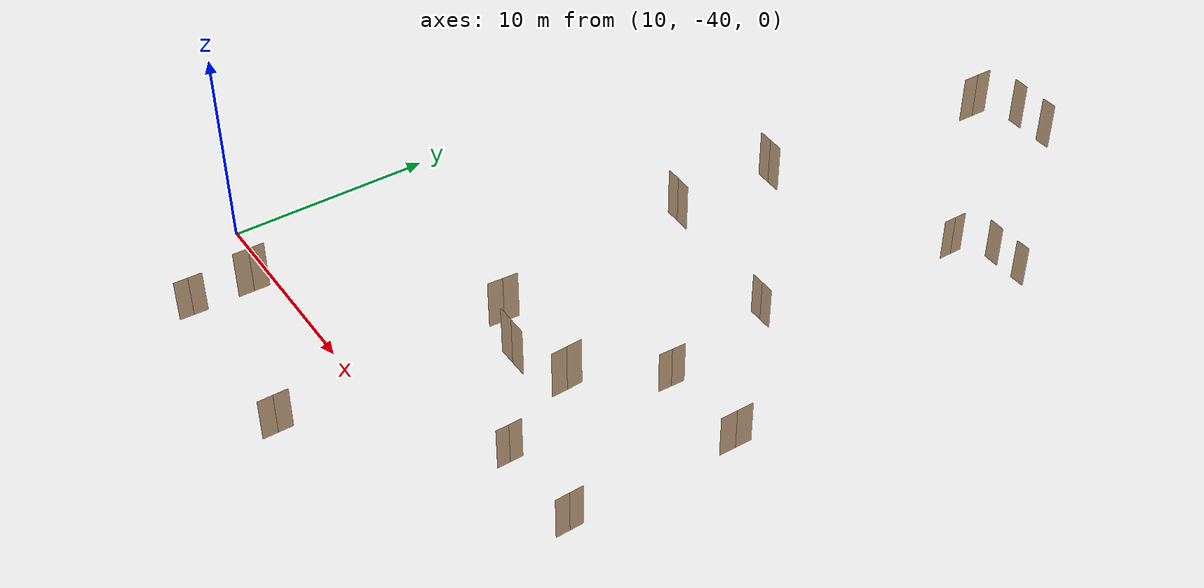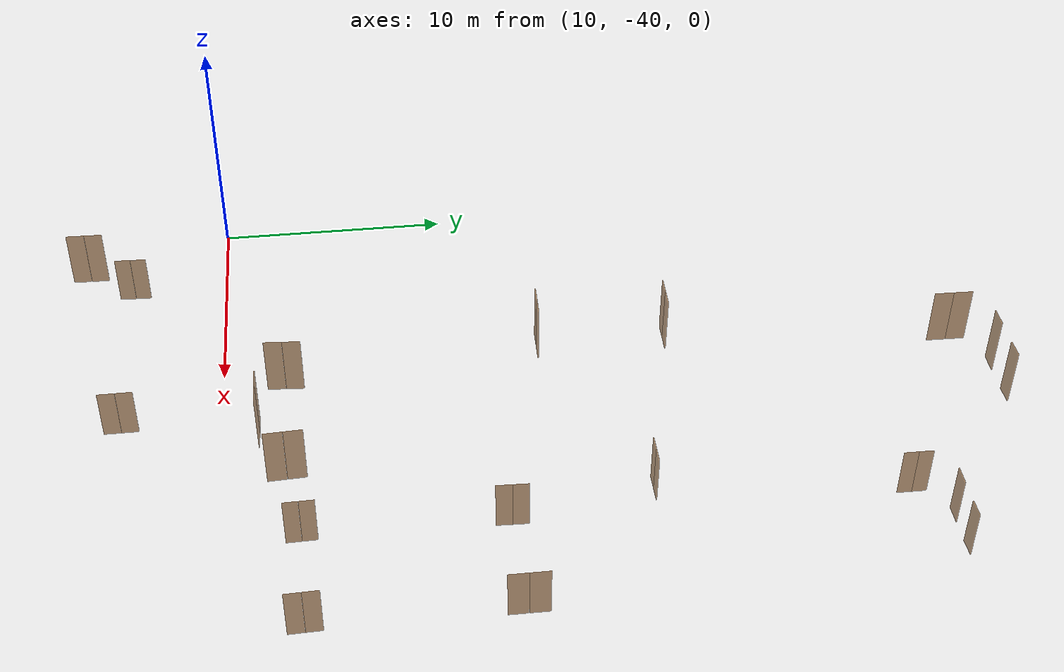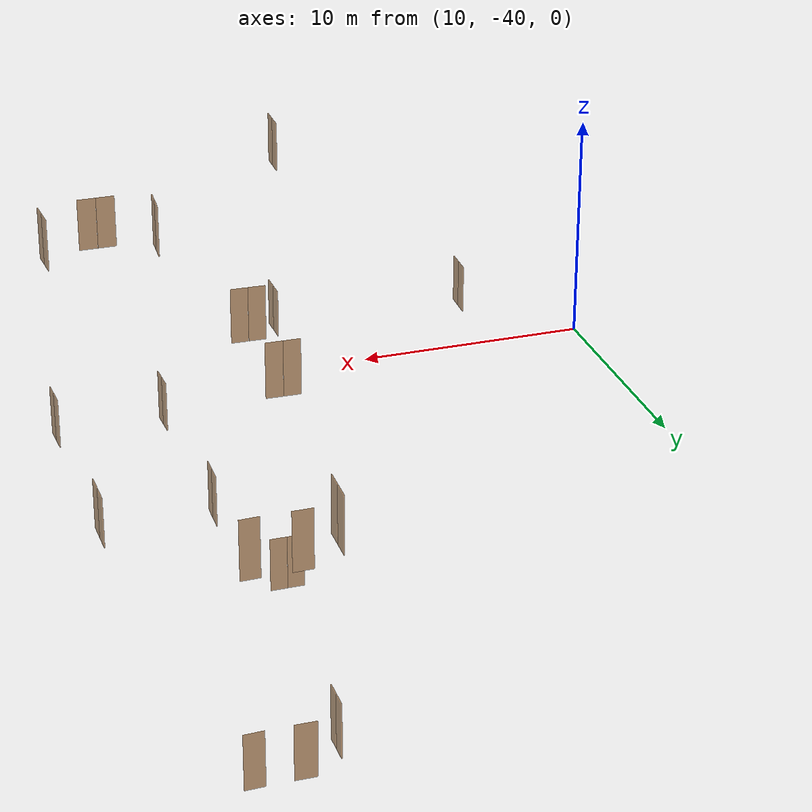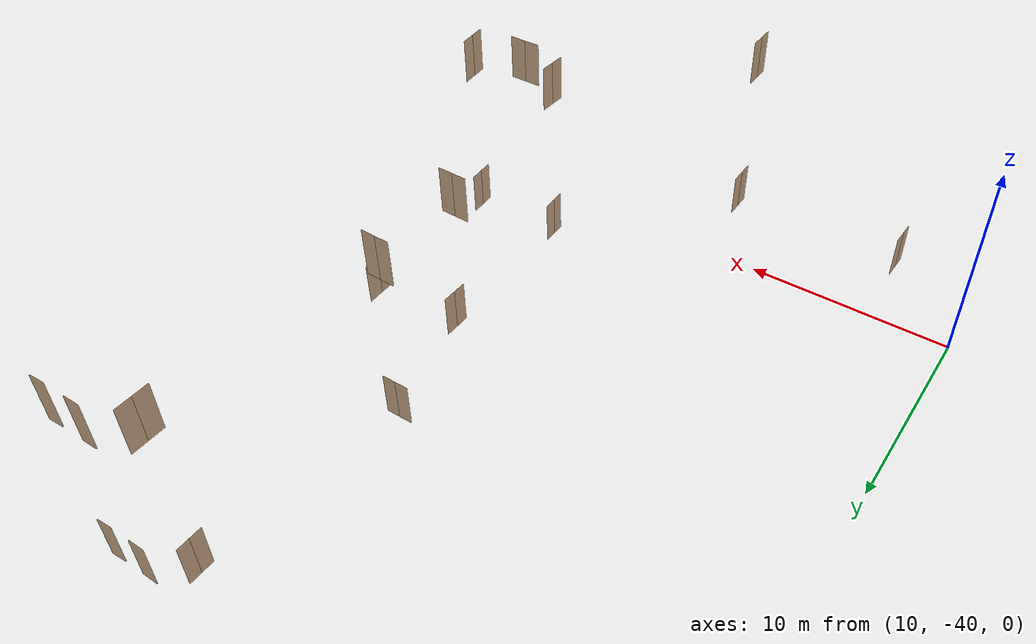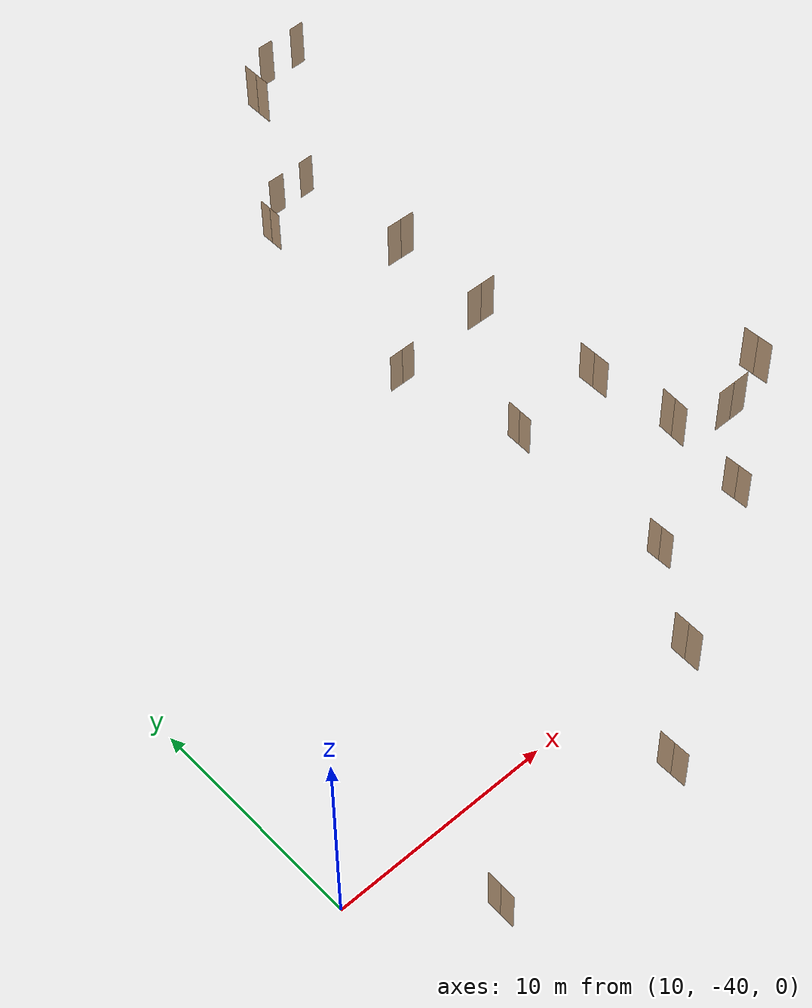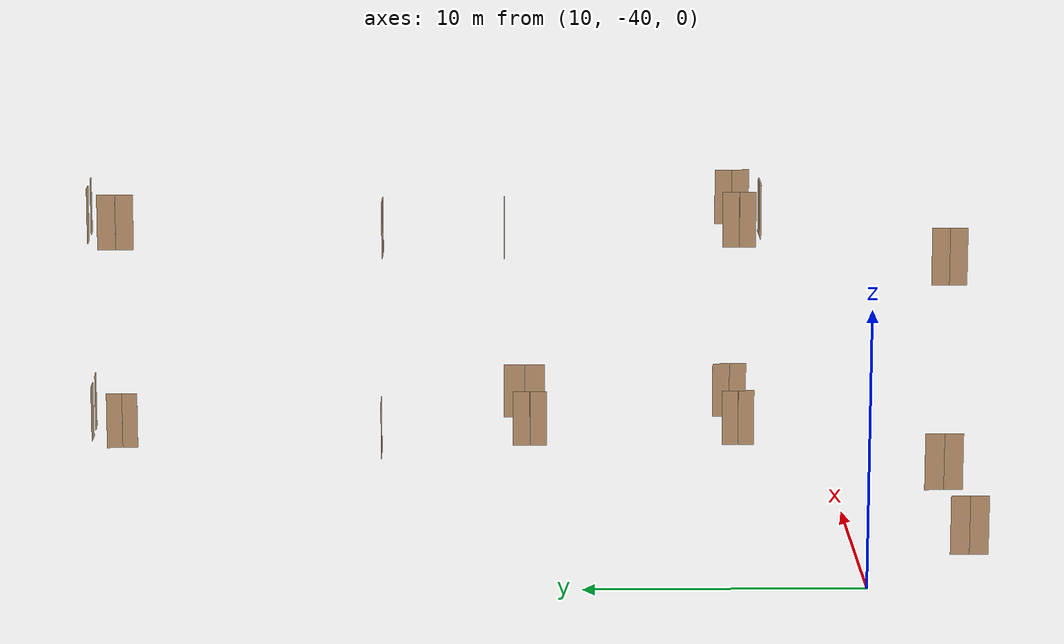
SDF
<sdf version="1.7">
 <world name="sim_world">
  <model name="TD1023CP2">
   <pose>14.151884414716331 -44.090000320503776 0.0 0 0 1.5401873563583324</pose>
   <link name="right">
    <pose>0.3461613428119867 0 1.11 0 0 0</pose>
    <visual name="right_visual">
     <geometry><box><size>0.6823226856239734 0.03 2.2</size></box></geometry>
     <material>
      <ambient>0.5 0.25 0 0.6</ambient>
      <diffuse>0.5 0.25 0 0.6</diffuse>
      <pbr><metal><metalness>0.0</metalness></metal></pbr>
     </material>
    </visual>
    <collision name="right_collision">
     <geometry><box><size>0.6823226856239734 0.03 2.2</size></box></geometry>
     <surface><contact><collide_bitmask>0x02</collide_bitmask></contact></surface>
    </collision>
    <inertial>
     <mass>50.0</mass>
     <inertia><ixx>20.17041666666667</ixx><iyy>22.106517697154636</iyy><izz>1.9436010304879652</izz></inertia>
    </inertial>
   </link>
   <joint name="right_joint" type="revolute">
    <parent>world</parent>
    <child>right</child>
    <axis><xyz>0 0 -1</xyz><limit><lower>0</lower><upper>1.57</upper></limit></axis>
    <pose>0.3461613428119867 0 0 0 0 0</pose>
   </joint>
   <link name="left">
    <pose>-0.3461613428119867 0 1.11 0 0 0</pose>
    <visual name="left_visual">
     <geometry><box><size>0.6823226856239734 0.03 2.2</size></box></geometry>
     <material>
      <ambient>0.5 0.25 0 0.6</ambient>
      <diffuse>0.5 0.25 0 0.6</diffuse>
      <pbr><metal><metalness>0.0</metalness></metal></pbr>
     </material>
    </visual>
    <collision name="left_collision">
     <geometry><box><size>0.6823226856239734 0.03 2.2</size></box></geometry>
     <surface><contact><collide_bitmask>0x02</collide_bitmask></contact></surface>
    </collision>
    <inertial>
     <mass>50.0</mass>
     <inertia><ixx>20.17041666666667</ixx><iyy>22.106517697154636</iyy><izz>1.9436010304879652</izz></inertia>
    </inertial>
   </link>
   <joint name="left_joint" type="revolute">
    <parent>world</parent>
    <child>left</child>
    <axis><xyz>0 0 -1</xyz><limit><lower>-1.57</lower><upper>0</upper></limit></axis>
    <pose>-0.3461613428119867 0 0 0 0 0</pose>
   </joint>
   <plugin name="register_component" filename="libregister_component.so">
    <component name="Door">
     <v_max_door>0.5</v_max_door>
     <a_max_door>0.3</a_max_door>
     <a_nom_door>0.15</a_nom_door>
     <dx_min_door>0.01</dx_min_door>
     <f_max_door>500.0</f_max_door>
     <ros_interface>true</ros_interface>
     <door name="TD1023CP2" type="DoubleSwingDoor" left_joint_name="left_joint" right_joint_name="right_joint"/>
    </component>
   </plugin>
  </model>
  <model name="TD1018AA">
   <pose>29.951908290406482 -36.82259198297031 0.0 0 0 -1.5430325593746388</pose>
   <link name="right">
    <pose>0.31754923010777264 0 1.11 0 0 0</pose>
    <visual name="right_visual">
     <geometry><box><size>0.6250984602155453 0.03 2.2</size></box></geometry>
     <material>
      <ambient>0.5 0.25 0 0.6</ambient>
      <diffuse>0.5 0.25 0 0.6</diffuse>
      <pbr><metal><metalness>0.0</metalness></metal></pbr>
     </material>
    </visual>
    <collision name="right_collision">
     <geometry><box><size>0.6250984602155453 0.03 2.2</size></box></geometry>
     <surface><contact><collide_bitmask>0x02</collide_bitmask></contact></surface>
    </collision>
    <inertial>
     <mass>50.0</mass>
     <inertia><ixx>20.17041666666667</ixx><iyy>21.79478368734936</iyy><izz>1.6318670206826902</izz></inertia>
    </inertial>
   </link>
   <joint name="right_joint" type="revolute">
    <parent>world</parent>
    <child>right</child>
    <axis><xyz>0 0 -1</xyz><limit><lower>0</lower><upper>1.57</upper></limit></axis>
    <pose>0.31754923010777264 0 0 0 0 0</pose>
   </joint>
   <link name="left">
    <pose>-0.31754923010777264 0 1.11 0 0 0</pose>
    <visual name="left_visual">
     <geometry><box><size>0.6250984602155453 0.03 2.2</size></box></geometry>
     <material>
      <ambient>0.5 0.25 0 0.6</ambient>
      <diffuse>0.5 0.25 0 0.6</diffuse>
      <pbr><metal><metalness>0.0</metalness></metal></pbr>
     </material>
    </visual>
    <collision name="left_collision">
     <geometry><box><size>0.6250984602155453 0.03 2.2</size></box></geometry>
     <surface><contact><collide_bitmask>0x02</collide_bitmask></contact></surface>
    </collision>
    <inertial>
     <mass>50.0</mass>
     <inertia><ixx>20.17041666666667</ixx><iyy>21.79478368734936</iyy><izz>1.6318670206826902</izz></inertia>
    </inertial>
   </link>
   <joint name="left_joint" type="revolute">
    <parent>world</parent>
    <child>left</child>
    <axis><xyz>0 0 -1</xyz><limit><lower>-1.57</lower><upper>0</upper></limit></axis>
    <pose>-0.31754923010777264 0 0 0 0 0</pose>
   </joint>
   <plugin name="register_component" filename="libregister_component.so">
    <component name="Door">
     <v_max_door>0.5</v_max_door>
     <a_max_door>0.3</a_max_door>
     <a_nom_door>0.15</a_nom_door>
     <dx_min_door>0.01</dx_min_door>
     <f_max_door>500.0</f_max_door>
     <ros_interface>true</ros_interface>
     <door name="TD1018AA" type="DoubleSwingDoor" left_joint_name="left_joint" right_joint_name="right_joint"/>
    </component>
   </plugin>
  </model>
  <model name="TD1015AA">
   <pose>34.52737757915742 -36.775884167848716 0.0 0 0 1.6088766030403268</pose>
   <link name="right">
    <pose>0.3404664622116848 0 1.11 0 0 0</pose>
    <visual name="right_visual">
     <geometry><box><size>0.6709329244233696 0.03 2.2</size></box></geometry>
     <material>
      <ambient>0.5 0.25 0 0.6</ambient>
      <diffuse>0.5 0.25 0 0.6</diffuse>
      <pbr><metal><metalness>0.0</metalness></metal></pbr>
     </material>
    </visual>
    <collision name="right_collision">
     <geometry><box><size>0.6709329244233696 0.03 2.2</size></box></geometry>
     <surface><contact><collide_bitmask>0x02</collide_bitmask></contact></surface>
    </collision>
    <inertial>
     <mass>50.0</mass>
     <inertia><ixx>20.17041666666667</ixx><iyy>22.042295787813735</iyy><izz>1.8793791211470627</izz></inertia>
    </inertial>
   </link>
   <joint name="right_joint" type="revolute">
    <parent>world</parent>
    <child>right</child>
    <axis><xyz>0 0 -1</xyz><limit><lower>0</lower><upper>1.57</upper></limit></axis>
    <pose>0.3404664622116848 0 0 0 0 0</pose>
   </joint>
   <link name="left">
    <pose>-0.3404664622116848 0 1.11 0 0 0</pose>
    <visual name="left_visual">
     <geometry><box><size>0.6709329244233696 0.03 2.2</size></box></geometry>
     <material>
      <ambient>0.5 0.25 0 0.6</ambient>
      <diffuse>0.5 0.25 0 0.6</diffuse>
      <pbr><metal><metalness>0.0</metalness></metal></pbr>
     </material>
    </visual>
    <collision name="left_collision">
     <geometry><box><size>0.6709329244233696 0.03 2.2</size></box></geometry>
     <surface><contact><collide_bitmask>0x02</collide_bitmask></contact></surface>
    </collision>
    <inertial>
     <mass>50.0</mass>
     <inertia><ixx>20.17041666666667</ixx><iyy>22.042295787813735</iyy><izz>1.8793791211470627</izz></inertia>
    </inertial>
   </link>
   <joint name="left_joint" type="revolute">
    <parent>world</parent>
    <child>left</child>
    <axis><xyz>0 0 -1</xyz><limit><lower>-1.57</lower><upper>0</upper></limit></axis>
    <pose>-0.3404664622116848 0 0 0 0 0</pose>
   </joint>
   <plugin name="register_component" filename="libregister_component.so">
    <component name="Door">
     <v_max_door>0.5</v_max_door>
     <a_max_door>0.3</a_max_door>
     <a_nom_door>0.15</a_nom_door>
     <dx_min_door>0.01</dx_min_door>
     <f_max_door>500.0</f_max_door>
     <ros_interface>true</ros_interface>
     <door name="TD1015AA" type="DoubleSwingDoor" left_joint_name="left_joint" right_joint_name="right_joint"/>
    </component>
   </plugin>
  </model>
  <model name="TD1016AA">
   <pose>34.49816555542807 -28.447820130466024 0.0 0 0 1.5747833511723939</pose>
   <link name="right">
    <pose>0.4123607880446388 0 1.11 0 0 0</pose>
    <visual name="right_visual">
     <geometry><box><size>0.8147215760892776 0.03 2.2</size></box></geometry>
     <material>
      <ambient>0.5 0.25 0 0.6</ambient>
      <diffuse>0.5 0.25 0 0.6</diffuse>
      <pbr><metal><metalness>0.0</metalness></metal></pbr>
     </material>
    </visual>
    <collision name="right_collision">
     <geometry><box><size>0.8147215760892776 0.03 2.2</size></box></geometry>
     <surface><contact><collide_bitmask>0x02</collide_bitmask></contact></surface>
    </collision>
    <inertial>
     <mass>50.0</mass>
     <inertia><ixx>20.17041666666667</ixx><iyy>22.93238019393916</iyy><izz>2.769463527272486</izz></inertia>
    </inertial>
   </link>
   <joint name="right_joint" type="revolute">
    <parent>world</parent>
    <child>right</child>
    <axis><xyz>0 0 -1</xyz><limit><lower>0</lower><upper>1.57</upper></limit></axis>
    <pose>0.4123607880446388 0 0 0 0 0</pose>
   </joint>
   <link name="left">
    <pose>-0.4123607880446388 0 1.11 0 0 0</pose>
    <visual name="left_visual">
     <geometry><box><size>0.8147215760892776 0.03 2.2</size></box></geometry>
     <material>
      <ambient>0.5 0.25 0 0.6</ambient>
      <diffuse>0.5 0.25 0 0.6</diffuse>
      <pbr><metal><metalness>0.0</metalness></metal></pbr>
     </material>
    </visual>
    <collision name="left_collision">
     <geometry><box><size>0.8147215760892776 0.03 2.2</size></box></geometry>
     <surface><contact><collide_bitmask>0x02</collide_bitmask></contact></surface>
    </collision>
    <inertial>
     <mass>50.0</mass>
     <inertia><ixx>20.17041666666667</ixx><iyy>22.93238019393916</iyy><izz>2.769463527272486</izz></inertia>
    </inertial>
   </link>
   <joint name="left_joint" type="revolute">
    <parent>world</parent>
    <child>left</child>
    <axis><xyz>0 0 -1</xyz><limit><lower>-1.57</lower><upper>0</upper></limit></axis>
    <pose>-0.4123607880446388 0 0 0 0 0</pose>
   </joint>
   <plugin name="register_component" filename="libregister_component.so">
    <component name="Door">
     <v_max_door>0.5</v_max_door>
     <a_max_door>0.3</a_max_door>
     <a_nom_door>0.15</a_nom_door>
     <dx_min_door>0.01</dx_min_door>
     <f_max_door>500.0</f_max_door>
     <ros_interface>true</ros_interface>
     <door name="TD1016AA" type="DoubleSwingDoor" left_joint_name="left_joint" right_joint_name="right_joint"/>
    </component>
   </plugin>
  </model>
  <model name="TD1017AA">
   <pose>29.95216640663613 -28.57745058997337 0.0 0 0 -1.597461133918594</pose>
   <link name="right">
    <pose>0.3354739616892271 0 1.11 0 0 0</pose>
    <visual name="right_visual">
     <geometry><box><size>0.6609479233784542 0.03 2.2</size></box></geometry>
     <material>
      <ambient>0.5 0.25 0 0.6</ambient>
      <diffuse>0.5 0.25 0 0.6</diffuse>
      <pbr><metal><metalness>0.0</metalness></metal></pbr>
     </material>
    </visual>
    <collision name="right_collision">
     <geometry><box><size>0.6609479233784542 0.03 2.2</size></box></geometry>
     <surface><contact><collide_bitmask>0x02</collide_bitmask></contact></surface>
    </collision>
    <inertial>
     <mass>50.0</mass>
     <inertia><ixx>20.17041666666667</ixx><iyy>21.986883989242884</iyy><izz>1.8239673225762125</izz></inertia>
    </inertial>
   </link>
   <joint name="right_joint" type="revolute">
    <parent>world</parent>
    <child>right</child>
    <axis><xyz>0 0 -1</xyz><limit><lower>0</lower><upper>1.57</upper></limit></axis>
    <pose>0.3354739616892271 0 0 0 0 0</pose>
   </joint>
   <link name="left">
    <pose>-0.3354739616892271 0 1.11 0 0 0</pose>
    <visual name="left_visual">
     <geometry><box><size>0.6609479233784542 0.03 2.2</size></box></geometry>
     <material>
      <ambient>0.5 0.25 0 0.6</ambient>
      <diffuse>0.5 0.25 0 0.6</diffuse>
      <pbr><metal><metalness>0.0</metalness></metal></pbr>
     </material>
    </visual>
    <collision name="left_collision">
     <geometry><box><size>0.6609479233784542 0.03 2.2</size></box></geometry>
     <surface><contact><collide_bitmask>0x02</collide_bitmask></contact></surface>
    </collision>
    <inertial>
     <mass>50.0</mass>
     <inertia><ixx>20.17041666666667</ixx><iyy>21.986883989242884</iyy><izz>1.8239673225762125</izz></inertia>
    </inertial>
   </link>
   <joint name="left_joint" type="revolute">
    <parent>world</parent>
    <child>left</child>
    <axis><xyz>0 0 -1</xyz><limit><lower>-1.57</lower><upper>0</upper></limit></axis>
    <pose>-0.3354739616892271 0 0 0 0 0</pose>
   </joint>
   <plugin name="register_component" filename="libregister_component.so">
    <component name="Door">
     <v_max_door>0.5</v_max_door>
     <a_max_door>0.3</a_max_door>
     <a_nom_door>0.15</a_nom_door>
     <dx_min_door>0.01</dx_min_door>
     <f_max_door>500.0</f_max_door>
     <ros_interface>true</ros_interface>
     <door name="TD1017AA" type="DoubleSwingDoor" left_joint_name="left_joint" right_joint_name="right_joint"/>
    </component>
   </plugin>
  </model>
  <model name="TD1022AA">
   <pose>28.610231351138722 -22.72563021294526 0.0 0 0 3.141592653589793</pose>
   <link name="right">
    <pose>0.3318589142145072 0 1.11 0 0 0</pose>
    <visual name="right_visual">
     <geometry><box><size>0.6537178284290144 0.03 2.2</size></box></geometry>
     <material>
      <ambient>0.5 0.25 0 0.6</ambient>
      <diffuse>0.5 0.25 0 0.6</diffuse>
      <pbr><metal><metalness>0.0</metalness></metal></pbr>
     </material>
    </visual>
    <collision name="right_collision">
     <geometry><box><size>0.6537178284290144 0.03 2.2</size></box></geometry>
     <surface><contact><collide_bitmask>0x02</collide_bitmask></contact></surface>
    </collision>
    <inertial>
     <mass>50.0</mass>
     <inertia><ixx>20.17041666666667</ixx><iyy>21.947279163358115</iyy><izz>1.7843624966914429</izz></inertia>
    </inertial>
   </link>
   <joint name="right_joint" type="revolute">
    <parent>world</parent>
    <child>right</child>
    <axis><xyz>0 0 -1</xyz><limit><lower>0</lower><upper>1.57</upper></limit></axis>
    <pose>0.3318589142145072 0 0 0 0 0</pose>
   </joint>
   <link name="left">
    <pose>-0.3318589142145072 0 1.11 0 0 0</pose>
    <visual name="left_visual">
     <geometry><box><size>0.6537178284290144 0.03 2.2</size></box></geometry>
     <material>
      <ambient>0.5 0.25 0 0.6</ambient>
      <diffuse>0.5 0.25 0 0.6</diffuse>
      <pbr><metal><metalness>0.0</metalness></metal></pbr>
     </material>
    </visual>
    <collision name="left_collision">
     <geometry><box><size>0.6537178284290144 0.03 2.2</size></box></geometry>
     <surface><contact><collide_bitmask>0x02</collide_bitmask></contact></surface>
    </collision>
    <inertial>
     <mass>50.0</mass>
     <inertia><ixx>20.17041666666667</ixx><iyy>21.947279163358115</iyy><izz>1.7843624966914429</izz></inertia>
    </inertial>
   </link>
   <joint name="left_joint" type="revolute">
    <parent>world</parent>
    <child>left</child>
    <axis><xyz>0 0 -1</xyz><limit><lower>-1.57</lower><upper>0</upper></limit></axis>
    <pose>-0.3318589142145072 0 0 0 0 0</pose>
   </joint>
   <plugin name="register_component" filename="libregister_component.so">
    <component name="Door">
     <v_max_door>0.5</v_max_door>
     <a_max_door>0.3</a_max_door>
     <a_nom_door>0.15</a_nom_door>
     <dx_min_door>0.01</dx_min_door>
     <f_max_door>500.0</f_max_door>
     <ros_interface>true</ros_interface>
     <door name="TD1022AA" type="DoubleSwingDoor" left_joint_name="left_joint" right_joint_name="right_joint"/>
    </component>
   </plugin>
  </model>
  <model name="TD1007AA">
   <pose>29.895930735907072 -12.466205875995822 0.0 0 0 -1.5737789346019069</pose>
   <link name="right">
    <pose>0.3066546672582795 0 1.11 0 0 0</pose>
    <visual name="right_visual">
     <geometry><box><size>0.603309334516559 0.03 2.2</size></box></geometry>
     <material>
      <ambient>0.5 0.25 0 0.6</ambient>
      <diffuse>0.5 0.25 0 0.6</diffuse>
      <pbr><metal><metalness>0.0</metalness></metal></pbr>
     </material>
    </visual>
    <collision name="right_collision">
     <geometry><box><size>0.603309334516559 0.03 2.2</size></box></geometry>
     <surface><contact><collide_bitmask>0x02</collide_bitmask></contact></surface>
    </collision>
    <inertial>
     <mass>50.0</mass>
     <inertia><ixx>20.17041666666667</ixx><iyy>21.683258971311727</iyy><izz>1.5203423046450555</izz></inertia>
    </inertial>
   </link>
   <joint name="right_joint" type="revolute">
    <parent>world</parent>
    <child>right</child>
    <axis><xyz>0 0 -1</xyz><limit><lower>0</lower><upper>1.57</upper></limit></axis>
    <pose>0.3066546672582795 0 0 0 0 0</pose>
   </joint>
   <link name="left">
    <pose>-0.3066546672582795 0 1.11 0 0 0</pose>
    <visual name="left_visual">
     <geometry><box><size>0.603309334516559 0.03 2.2</size></box></geometry>
     <material>
      <ambient>0.5 0.25 0 0.6</ambient>
      <diffuse>0.5 0.25 0 0.6</diffuse>
      <pbr><metal><metalness>0.0</metalness></metal></pbr>
     </material>
    </visual>
    <collision name="left_collision">
     <geometry><box><size>0.603309334516559 0.03 2.2</size></box></geometry>
     <surface><contact><collide_bitmask>0x02</collide_bitmask></contact></surface>
    </collision>
    <inertial>
     <mass>50.0</mass>
     <inertia><ixx>20.17041666666667</ixx><iyy>21.683258971311727</iyy><izz>1.5203423046450555</izz></inertia>
    </inertial>
   </link>
   <joint name="left_joint" type="revolute">
    <parent>world</parent>
    <child>left</child>
    <axis><xyz>0 0 -1</xyz><limit><lower>-1.57</lower><upper>0</upper></limit></axis>
    <pose>-0.3066546672582795 0 0 0 0 0</pose>
   </joint>
   <plugin name="register_component" filename="libregister_component.so">
    <component name="Door">
     <v_max_door>0.5</v_max_door>
     <a_max_door>0.3</a_max_door>
     <a_nom_door>0.15</a_nom_door>
     <dx_min_door>0.01</dx_min_door>
     <f_max_door>500.0</f_max_door>
     <ros_interface>true</ros_interface>
     <door name="TD1007AA" type="DoubleSwingDoor" left_joint_name="left_joint" right_joint_name="right_joint"/>
    </component>
   </plugin>
  </model>
  <model name="em2">
   <pose>33.0865727852599 -11.178082443157725 0.0 0 0 0.03191096870064347</pose>
   <link name="right">
    <pose>0 0 1.11 0 0 0</pose>
    <visual name="right_visual">
     <geometry><box><size>0.7504608987853366 0.03 2.2</size></box></geometry>
     <material>
      <ambient>0.5 0.25 0 0.6</ambient>
      <diffuse>0.5 0.25 0 0.6</diffuse>
      <pbr><metal><metalness>0.0</metalness></metal></pbr>
     </material>
    </visual>
    <collision name="right_collision">
     <geometry><box><size>0.7504608987853366 0.03 2.2</size></box></geometry>
     <surface><contact><collide_bitmask>0x02</collide_bitmask></contact></surface>
    </collision>
    <inertial>
     <mass>50.0</mass>
     <inertia><ixx>20.17041666666667</ixx><iyy>22.5132981691904</iyy><izz>2.3503815025237302</izz></inertia>
    </inertial>
   </link>
   <joint name="right_joint" type="revolute">
    <parent>world</parent>
    <child>right</child>
    <axis><xyz>0 0 -1</xyz><limit><lower>0</lower><upper>1.57</upper></limit></axis>
    <pose>0.3802304493926683 0 0 0 0 0</pose>
   </joint>
   <plugin name="register_component" filename="libregister_component.so">
    <component name="Door">
     <v_max_door>0.5</v_max_door>
     <a_max_door>0.3</a_max_door>
     <a_nom_door>0.15</a_nom_door>
     <dx_min_door>0.01</dx_min_door>
     <f_max_door>500.0</f_max_door>
     <ros_interface>true</ros_interface>
     <door name="em2" type="SwingDoor" left_joint_name="empty_joint" right_joint_name="right_joint"/>
    </component>
   </plugin>
  </model>
  <model name="em1">
   <pose>31.33196599077849 -11.186173825834967 0.0 0 0 3.131795982307093</pose>
   <link name="right">
    <pose>0 0 1.11 0 0 0</pose>
    <visual name="right_visual">
     <geometry><box><size>0.8147994904935095 0.03 2.2</size></box></geometry>
     <material>
      <ambient>0.5 0.25 0 0.6</ambient>
      <diffuse>0.5 0.25 0 0.6</diffuse>
      <pbr><metal><metalness>0.0</metalness></metal></pbr>
     </material>
    </visual>
    <collision name="right_collision">
     <geometry><box><size>0.8147994904935095 0.03 2.2</size></box></geometry>
     <surface><contact><collide_bitmask>0x02</collide_bitmask></contact></surface>
    </collision>
    <inertial>
     <mass>50.0</mass>
     <inertia><ixx>20.17041666666667</ixx><iyy>22.93290920711868</iyy><izz>2.7699925404520114</izz></inertia>
    </inertial>
   </link>
   <joint name="right_joint" type="revolute">
    <parent>world</parent>
    <child>right</child>
    <axis><xyz>0 0 1</xyz><limit><lower>0</lower><upper>1.57</upper></limit></axis>
    <pose>0.41239974524675477 0 0 0 0 0</pose>
   </joint>
   <plugin name="register_component" filename="libregister_component.so">
    <component name="Door">
     <v_max_door>0.5</v_max_door>
     <a_max_door>0.3</a_max_door>
     <a_nom_door>0.15</a_nom_door>
     <dx_min_door>0.01</dx_min_door>
     <f_max_door>500.0</f_max_door>
     <ros_interface>true</ros_interface>
     <door name="em1" type="SwingDoor" left_joint_name="empty_joint" right_joint_name="right_joint"/>
    </component>
   </plugin>
  </model>
  <model name="TD1005CP2">
   <pose>23.0216221936834 -44.19776945760438 0.0 0 0 1.5793460133227735</pose>
   <link name="right">
    <pose>0.36556766552237047 0 1.11 0 0 0</pose>
    <visual name="right_visual">
     <geometry><box><size>0.7211353310447409 0.03 2.2</size></box></geometry>
     <material>
      <ambient>0.5 0.25 0 0.6</ambient>
      <diffuse>0.5 0.25 0 0.6</diffuse>
      <pbr><metal><metalness>0.0</metalness></metal></pbr>
     </material>
    </visual>
    <collision name="right_collision">
     <geometry><box><size>0.7211353310447409 0.03 2.2</size></box></geometry>
     <surface><contact><collide_bitmask>0x02</collide_bitmask></contact></surface>
    </collision>
    <inertial>
     <mass>50.0</mass>
     <inertia><ixx>20.17041666666667</ixx><iyy>22.33348402367087</iyy><izz>2.1705673570042006</izz></inertia>
    </inertial>
   </link>
   <joint name="right_joint" type="revolute">
    <parent>world</parent>
    <child>right</child>
    <axis><xyz>0 0 -1</xyz><limit><lower>0</lower><upper>1.57</upper></limit></axis>
    <pose>0.36556766552237047 0 0 0 0 0</pose>
   </joint>
   <link name="left">
    <pose>-0.36556766552237047 0 1.11 0 0 0</pose>
    <visual name="left_visual">
     <geometry><box><size>0.7211353310447409 0.03 2.2</size></box></geometry>
     <material>
      <ambient>0.5 0.25 0 0.6</ambient>
      <diffuse>0.5 0.25 0 0.6</diffuse>
      <pbr><metal><metalness>0.0</metalness></metal></pbr>
     </material>
    </visual>
    <collision name="left_collision">
     <geometry><box><size>0.7211353310447409 0.03 2.2</size></box></geometry>
     <surface><contact><collide_bitmask>0x02</collide_bitmask></contact></surface>
    </collision>
    <inertial>
     <mass>50.0</mass>
     <inertia><ixx>20.17041666666667</ixx><iyy>22.33348402367087</iyy><izz>2.1705673570042006</izz></inertia>
    </inertial>
   </link>
   <joint name="left_joint" type="revolute">
    <parent>world</parent>
    <child>left</child>
    <axis><xyz>0 0 -1</xyz><limit><lower>-1.57</lower><upper>0</upper></limit></axis>
    <pose>-0.36556766552237047 0 0 0 0 0</pose>
   </joint>
   <plugin name="register_component" filename="libregister_component.so">
    <component name="Door">
     <v_max_door>0.5</v_max_door>
     <a_max_door>0.3</a_max_door>
     <a_nom_door>0.15</a_nom_door>
     <dx_min_door>0.01</dx_min_door>
     <f_max_door>500.0</f_max_door>
     <ros_interface>true</ros_interface>
     <door name="TD1005CP2" type="DoubleSwingDoor" left_joint_name="left_joint" right_joint_name="right_joint"/>
    </component>
   </plugin>
  </model>
  <model name="TD1104">
   <pose>29.831071160037812 -12.370400812692349 8.0 0 0 1.555111475044199</pose>
   <link name="right">
    <pose>0.3555122669612724 0 1.11 0 0 0</pose>
    <visual name="right_visual">
     <geometry><box><size>0.7010245339225448 0.03 2.2</size></box></geometry>
     <material>
      <ambient>0.5 0.25 0 0.6</ambient>
      <diffuse>0.5 0.25 0 0.6</diffuse>
      <pbr><metal><metalness>0.0</metalness></metal></pbr>
     </material>
    </visual>
    <collision name="right_collision">
     <geometry><box><size>0.7010245339225448 0.03 2.2</size></box></geometry>
     <surface><contact><collide_bitmask>0x02</collide_bitmask></contact></surface>
    </collision>
    <inertial>
     <mass>50.0</mass>
     <inertia><ixx>20.17041666666667</ixx><iyy>22.214314154838842</iyy><izz>2.0513974881721717</izz></inertia>
    </inertial>
   </link>
   <joint name="right_joint" type="revolute">
    <parent>world</parent>
    <child>right</child>
    <axis><xyz>0 0 1</xyz><limit><lower>0</lower><upper>1.57</upper></limit></axis>
    <pose>0.3555122669612724 0 0 0 0 0</pose>
   </joint>
   <link name="left">
    <pose>-0.3555122669612724 0 1.11 0 0 0</pose>
    <visual name="left_visual">
     <geometry><box><size>0.7010245339225448 0.03 2.2</size></box></geometry>
     <material>
      <ambient>0.5 0.25 0 0.6</ambient>
      <diffuse>0.5 0.25 0 0.6</diffuse>
      <pbr><metal><metalness>0.0</metalness></metal></pbr>
     </material>
    </visual>
    <collision name="left_collision">
     <geometry><box><size>0.7010245339225448 0.03 2.2</size></box></geometry>
     <surface><contact><collide_bitmask>0x02</collide_bitmask></contact></surface>
    </collision>
    <inertial>
     <mass>50.0</mass>
     <inertia><ixx>20.17041666666667</ixx><iyy>22.214314154838842</iyy><izz>2.0513974881721717</izz></inertia>
    </inertial>
   </link>
   <joint name="left_joint" type="revolute">
    <parent>world</parent>
    <child>left</child>
    <axis><xyz>0 0 1</xyz><limit><lower>-1.57</lower><upper>0</upper></limit></axis>
    <pose>-0.3555122669612724 0 0 0 0 0</pose>
   </joint>
   <plugin name="register_component" filename="libregister_component.so">
    <component name="Door">
     <v_max_door>0.5</v_max_door>
     <a_max_door>0.3</a_max_door>
     <a_nom_door>0.15</a_nom_door>
     <dx_min_door>0.01</dx_min_door>
     <f_max_door>500.0</f_max_door>
     <ros_interface>true</ros_interface>
     <door name="TD1104" type="DoubleSwingDoor" left_joint_name="left_joint" right_joint_name="right_joint"/>
    </component>
   </plugin>
  </model>
  <model name="d2">
   <pose>33.059571625828255 -11.182166293832482 8.0 0 0 0.03094497696470782</pose>
   <link name="right">
    <pose>0 0 1.11 0 0 0</pose>
    <visual name="right_visual">
     <geometry><box><size>0.6926931969739676 0.03 2.2</size></box></geometry>
     <material>
      <ambient>0.5 0.25 0 0.6</ambient>
      <diffuse>0.5 0.25 0 0.6</diffuse>
      <pbr><metal><metalness>0.0</metalness></metal></pbr>
     </material>
    </visual>
    <collision name="right_collision">
     <geometry><box><size>0.6926931969739676 0.03 2.2</size></box></geometry>
     <surface><contact><collide_bitmask>0x02</collide_bitmask></contact></surface>
    </collision>
    <inertial>
     <mass>50.0</mass>
     <inertia><ixx>20.17041666666667</ixx><iyy>22.165932771391738</iyy><izz>2.0030161047250665</izz></inertia>
    </inertial>
   </link>
   <joint name="right_joint" type="revolute">
    <parent>world</parent>
    <child>right</child>
    <axis><xyz>0 0 -1</xyz><limit><lower>0</lower><upper>1.57</upper></limit></axis>
    <pose>0.3513465984869838 0 0 0 0 0</pose>
   </joint>
   <plugin name="register_component" filename="libregister_component.so">
    <component name="Door">
     <v_max_door>0.5</v_max_door>
     <a_max_door>0.3</a_max_door>
     <a_nom_door>0.15</a_nom_door>
     <dx_min_door>0.01</dx_min_door>
     <f_max_door>500.0</f_max_door>
     <ros_interface>true</ros_interface>
     <door name="d2" type="SwingDoor" left_joint_name="empty_joint" right_joint_name="right_joint"/>
    </component>
   </plugin>
  </model>
  <model name="d1">
   <pose>31.3333783748407 -11.187873680363586 8.0 0 0 -3.1414135882629974</pose>
   <link name="right">
    <pose>0 0 1.11 0 0 0</pose>
    <visual name="right_visual">
     <geometry><box><size>0.7193857536835634 0.03 2.2</size></box></geometry>
     <material>
      <ambient>0.5 0.25 0 0.6</ambient>
      <diffuse>0.5 0.25 0 0.6</diffuse>
      <pbr><metal><metalness>0.0</metalness></metal></pbr>
     </material>
    </visual>
    <collision name="right_collision">
     <geometry><box><size>0.7193857536835634 0.03 2.2</size></box></geometry>
     <surface><contact><collide_bitmask>0x02</collide_bitmask></contact></surface>
    </collision>
    <inertial>
     <mass>50.0</mass>
     <inertia><ixx>20.17041666666667</ixx><iyy>22.322982760845292</iyy><izz>2.160066094178619</izz></inertia>
    </inertial>
   </link>
   <joint name="right_joint" type="revolute">
    <parent>world</parent>
    <child>right</child>
    <axis><xyz>0 0 1</xyz><limit><lower>0</lower><upper>1.57</upper></limit></axis>
    <pose>0.3646928768417817 0 0 0 0 0</pose>
   </joint>
   <plugin name="register_component" filename="libregister_component.so">
    <component name="Door">
     <v_max_door>0.5</v_max_door>
     <a_max_door>0.3</a_max_door>
     <a_nom_door>0.15</a_nom_door>
     <dx_min_door>0.01</dx_min_door>
     <f_max_door>500.0</f_max_door>
     <ros_interface>true</ros_interface>
     <door name="d1" type="SwingDoor" left_joint_name="empty_joint" right_joint_name="right_joint"/>
    </component>
   </plugin>
  </model>
  <model name="TD1105">
   <pose>28.610416642762054 -22.824089985987072 8.0 0 0 3.11904258186162</pose>
   <link name="right">
    <pose>0.33110365024338156 0 1.11 0 0 0</pose>
    <visual name="right_visual">
     <geometry><box><size>0.6522073004867631 0.03 2.2</size></box></geometry>
     <material>
      <ambient>0.5 0.25 0 0.6</ambient>
      <diffuse>0.5 0.25 0 0.6</diffuse>
      <pbr><metal><metalness>0.0</metalness></metal></pbr>
     </material>
    </visual>
    <collision name="right_collision">
     <geometry><box><size>0.6522073004867631 0.03 2.2</size></box></geometry>
     <surface><contact><collide_bitmask>0x02</collide_bitmask></contact></surface>
    </collision>
    <inertial>
     <mass>50.0</mass>
     <inertia><ixx>20.17041666666667</ixx><iyy>21.9390598450343</iyy><izz>1.7761431783676291</izz></inertia>
    </inertial>
   </link>
   <joint name="right_joint" type="revolute">
    <parent>world</parent>
    <child>right</child>
    <axis><xyz>0 0 -1</xyz><limit><lower>0</lower><upper>1.57</upper></limit></axis>
    <pose>0.33110365024338156 0 0 0 0 0</pose>
   </joint>
   <link name="left">
    <pose>-0.33110365024338156 0 1.11 0 0 0</pose>
    <visual name="left_visual">
     <geometry><box><size>0.6522073004867631 0.03 2.2</size></box></geometry>
     <material>
      <ambient>0.5 0.25 0 0.6</ambient>
      <diffuse>0.5 0.25 0 0.6</diffuse>
      <pbr><metal><metalness>0.0</metalness></metal></pbr>
     </material>
    </visual>
    <collision name="left_collision">
     <geometry><box><size>0.6522073004867631 0.03 2.2</size></box></geometry>
     <surface><contact><collide_bitmask>0x02</collide_bitmask></contact></surface>
    </collision>
    <inertial>
     <mass>50.0</mass>
     <inertia><ixx>20.17041666666667</ixx><iyy>21.9390598450343</iyy><izz>1.7761431783676291</izz></inertia>
    </inertial>
   </link>
   <joint name="left_joint" type="revolute">
    <parent>world</parent>
    <child>left</child>
    <axis><xyz>0 0 -1</xyz><limit><lower>-1.57</lower><upper>0</upper></limit></axis>
    <pose>-0.33110365024338156 0 0 0 0 0</pose>
   </joint>
   <plugin name="register_component" filename="libregister_component.so">
    <component name="Door">
     <v_max_door>0.5</v_max_door>
     <a_max_door>0.3</a_max_door>
     <a_nom_door>0.15</a_nom_door>
     <dx_min_door>0.01</dx_min_door>
     <f_max_door>500.0</f_max_door>
     <ros_interface>true</ros_interface>
     <door name="TD1105" type="DoubleSwingDoor" left_joint_name="left_joint" right_joint_name="right_joint"/>
    </component>
   </plugin>
  </model>
  <model name="TD11061">
   <pose>28.599983485678962 -27.548646343588032 8.0 0 0 -0.022152788436983237</pose>
   <link name="right">
    <pose>0.3367416731741536 0 1.11 0 0 0</pose>
    <visual name="right_visual">
     <geometry><box><size>0.6634833463483072 0.03 2.2</size></box></geometry>
     <material>
      <ambient>0.5 0.25 0 0.6</ambient>
      <diffuse>0.5 0.25 0 0.6</diffuse>
      <pbr><metal><metalness>0.0</metalness></metal></pbr>
     </material>
    </visual>
    <collision name="right_collision">
     <geometry><box><size>0.6634833463483072 0.03 2.2</size></box></geometry>
     <surface><contact><collide_bitmask>0x02</collide_bitmask></contact></surface>
    </collision>
    <inertial>
     <mass>50.0</mass>
     <inertia><ixx>20.17041666666667</ixx><iyy>22.00087562867312</iyy><izz>1.8379589620064491</izz></inertia>
    </inertial>
   </link>
   <joint name="right_joint" type="revolute">
    <parent>world</parent>
    <child>right</child>
    <axis><xyz>0 0 -1</xyz><limit><lower>0</lower><upper>1.57</upper></limit></axis>
    <pose>0.3367416731741536 0 0 0 0 0</pose>
   </joint>
   <link name="left">
    <pose>-0.3367416731741536 0 1.11 0 0 0</pose>
    <visual name="left_visual">
     <geometry><box><size>0.6634833463483072 0.03 2.2</size></box></geometry>
     <material>
      <ambient>0.5 0.25 0 0.6</ambient>
      <diffuse>0.5 0.25 0 0.6</diffuse>
      <pbr><metal><metalness>0.0</metalness></metal></pbr>
     </material>
    </visual>
    <collision name="left_collision">
     <geometry><box><size>0.6634833463483072 0.03 2.2</size></box></geometry>
     <surface><contact><collide_bitmask>0x02</collide_bitmask></contact></surface>
    </collision>
    <inertial>
     <mass>50.0</mass>
     <inertia><ixx>20.17041666666667</ixx><iyy>22.00087562867312</iyy><izz>1.8379589620064491</izz></inertia>
    </inertial>
   </link>
   <joint name="left_joint" type="revolute">
    <parent>world</parent>
    <child>left</child>
    <axis><xyz>0 0 -1</xyz><limit><lower>-1.57</lower><upper>0</upper></limit></axis>
    <pose>-0.3367416731741536 0 0 0 0 0</pose>
   </joint>
   <plugin name="register_component" filename="libregister_component.so">
    <component name="Door">
     <v_max_door>0.5</v_max_door>
     <a_max_door>0.3</a_max_door>
     <a_nom_door>0.15</a_nom_door>
     <dx_min_door>0.01</dx_min_door>
     <f_max_door>500.0</f_max_door>
     <ros_interface>true</ros_interface>
     <door name="TD11061" type="DoubleSwingDoor" left_joint_name="left_joint" right_joint_name="right_joint"/>
    </component>
   </plugin>
  </model>
  <model name="TD11062">
   <pose>29.940759694369184 -36.78311016332414 8.0 0 0 -1.6333948249818107</pose>
   <link name="right">
    <pose>0.3297879047775497 0 1.11 0 0 0</pose>
    <visual name="right_visual">
     <geometry><box><size>0.6495758095550994 0.03 2.2</size></box></geometry>
     <material>
      <ambient>0.5 0.25 0 0.6</ambient>
      <diffuse>0.5 0.25 0 0.6</diffuse>
      <pbr><metal><metalness>0.0</metalness></metal></pbr>
     </material>
    </visual>
    <collision name="right_collision">
     <geometry><box><size>0.6495758095550994 0.03 2.2</size></box></geometry>
     <surface><contact><collide_bitmask>0x02</collide_bitmask></contact></surface>
    </collision>
    <inertial>
     <mass>50.0</mass>
     <inertia><ixx>20.17041666666667</ixx><iyy>21.92478638482985</iyy><izz>1.7618697181631786</izz></inertia>
    </inertial>
   </link>
   <joint name="right_joint" type="revolute">
    <parent>world</parent>
    <child>right</child>
    <axis><xyz>0 0 -1</xyz><limit><lower>0</lower><upper>1.57</upper></limit></axis>
    <pose>0.3297879047775497 0 0 0 0 0</pose>
   </joint>
   <link name="left">
    <pose>-0.3297879047775497 0 1.11 0 0 0</pose>
    <visual name="left_visual">
     <geometry><box><size>0.6495758095550994 0.03 2.2</size></box></geometry>
     <material>
      <ambient>0.5 0.25 0 0.6</ambient>
      <diffuse>0.5 0.25 0 0.6</diffuse>
      <pbr><metal><metalness>0.0</metalness></metal></pbr>
     </material>
    </visual>
    <collision name="left_collision">
     <geometry><box><size>0.6495758095550994 0.03 2.2</size></box></geometry>
     <surface><contact><collide_bitmask>0x02</collide_bitmask></contact></surface>
    </collision>
    <inertial>
     <mass>50.0</mass>
     <inertia><ixx>20.17041666666667</ixx><iyy>21.92478638482985</iyy><izz>1.7618697181631786</izz></inertia>
    </inertial>
   </link>
   <joint name="left_joint" type="revolute">
    <parent>world</parent>
    <child>left</child>
    <axis><xyz>0 0 -1</xyz><limit><lower>-1.57</lower><upper>0</upper></limit></axis>
    <pose>-0.3297879047775497 0 0 0 0 0</pose>
   </joint>
   <plugin name="register_component" filename="libregister_component.so">
    <component name="Door">
     <v_max_door>0.5</v_max_door>
     <a_max_door>0.3</a_max_door>
     <a_nom_door>0.15</a_nom_door>
     <dx_min_door>0.01</dx_min_door>
     <f_max_door>500.0</f_max_door>
     <ros_interface>true</ros_interface>
     <door name="TD11062" type="DoubleSwingDoor" left_joint_name="left_joint" right_joint_name="right_joint"/>
    </component>
   </plugin>
  </model>
  <model name="TD118CP1">
   <pose>32.148312796529765 -37.736550331229736 8.0 0 0 3.1371944600582897</pose>
   <link name="right">
    <pose>0.38617783216979074 0 1.11 0 0 0</pose>
    <visual name="right_visual">
     <geometry><box><size>0.7623556643395815 0.03 2.2</size></box></geometry>
     <material>
      <ambient>0.5 0.25 0 0.6</ambient>
      <diffuse>0.5 0.25 0 0.6</diffuse>
      <pbr><metal><metalness>0.0</metalness></metal></pbr>
     </material>
    </visual>
    <collision name="right_collision">
     <geometry><box><size>0.7623556643395815 0.03 2.2</size></box></geometry>
     <surface><contact><collide_bitmask>0x02</collide_bitmask></contact></surface>
    </collision>
    <inertial>
     <mass>50.0</mass>
     <inertia><ixx>20.17041666666667</ixx><iyy>22.588275662294357</iyy><izz>2.425358995627686</izz></inertia>
    </inertial>
   </link>
   <joint name="right_joint" type="revolute">
    <parent>world</parent>
    <child>right</child>
    <axis><xyz>0 0 -1</xyz><limit><lower>0</lower><upper>1.57</upper></limit></axis>
    <pose>0.38617783216979074 0 0 0 0 0</pose>
   </joint>
   <link name="left">
    <pose>-0.38617783216979074 0 1.11 0 0 0</pose>
    <visual name="left_visual">
     <geometry><box><size>0.7623556643395815 0.03 2.2</size></box></geometry>
     <material>
      <ambient>0.5 0.25 0 0.6</ambient>
      <diffuse>0.5 0.25 0 0.6</diffuse>
      <pbr><metal><metalness>0.0</metalness></metal></pbr>
     </material>
    </visual>
    <collision name="left_collision">
     <geometry><box><size>0.7623556643395815 0.03 2.2</size></box></geometry>
     <surface><contact><collide_bitmask>0x02</collide_bitmask></contact></surface>
    </collision>
    <inertial>
     <mass>50.0</mass>
     <inertia><ixx>20.17041666666667</ixx><iyy>22.588275662294357</iyy><izz>2.425358995627686</izz></inertia>
    </inertial>
   </link>
   <joint name="left_joint" type="revolute">
    <parent>world</parent>
    <child>left</child>
    <axis><xyz>0 0 -1</xyz><limit><lower>-1.57</lower><upper>0</upper></limit></axis>
    <pose>-0.38617783216979074 0 0 0 0 0</pose>
   </joint>
   <plugin name="register_component" filename="libregister_component.so">
    <component name="Door">
     <v_max_door>0.5</v_max_door>
     <a_max_door>0.3</a_max_door>
     <a_nom_door>0.15</a_nom_door>
     <dx_min_door>0.01</dx_min_door>
     <f_max_door>500.0</f_max_door>
     <ros_interface>true</ros_interface>
     <door name="TD118CP1" type="DoubleSwingDoor" left_joint_name="left_joint" right_joint_name="right_joint"/>
    </component>
   </plugin>
  </model>
  <model name="TD11012">
   <pose>34.533668379086635 -36.786047453060874 8.0 0 0 -1.5157225496062487</pose>
   <link name="right">
    <pose>0.3428249214216214 0 1.11 0 0 0</pose>
    <visual name="right_visual">
     <geometry><box><size>0.6756498428432428 0.03 2.2</size></box></geometry>
     <material>
      <ambient>0.5 0.25 0 0.6</ambient>
      <diffuse>0.5 0.25 0 0.6</diffuse>
      <pbr><metal><metalness>0.0</metalness></metal></pbr>
     </material>
    </visual>
    <collision name="right_collision">
     <geometry><box><size>0.6756498428432428 0.03 2.2</size></box></geometry>
     <surface><contact><collide_bitmask>0x02</collide_bitmask></contact></surface>
    </collision>
    <inertial>
     <mass>50.0</mass>
     <inertia><ixx>20.17041666666667</ixx><iyy>22.068761292225414</iyy><izz>1.905844625558745</izz></inertia>
    </inertial>
   </link>
   <joint name="right_joint" type="revolute">
    <parent>world</parent>
    <child>right</child>
    <axis><xyz>0 0 1</xyz><limit><lower>0</lower><upper>1.57</upper></limit></axis>
    <pose>0.3428249214216214 0 0 0 0 0</pose>
   </joint>
   <link name="left">
    <pose>-0.3428249214216214 0 1.11 0 0 0</pose>
    <visual name="left_visual">
     <geometry><box><size>0.6756498428432428 0.03 2.2</size></box></geometry>
     <material>
      <ambient>0.5 0.25 0 0.6</ambient>
      <diffuse>0.5 0.25 0 0.6</diffuse>
      <pbr><metal><metalness>0.0</metalness></metal></pbr>
     </material>
    </visual>
    <collision name="left_collision">
     <geometry><box><size>0.6756498428432428 0.03 2.2</size></box></geometry>
     <surface><contact><collide_bitmask>0x02</collide_bitmask></contact></surface>
    </collision>
    <inertial>
     <mass>50.0</mass>
     <inertia><ixx>20.17041666666667</ixx><iyy>22.068761292225414</iyy><izz>1.905844625558745</izz></inertia>
    </inertial>
   </link>
   <joint name="left_joint" type="revolute">
    <parent>world</parent>
    <child>left</child>
    <axis><xyz>0 0 1</xyz><limit><lower>-1.57</lower><upper>0</upper></limit></axis>
    <pose>-0.3428249214216214 0 0 0 0 0</pose>
   </joint>
   <plugin name="register_component" filename="libregister_component.so">
    <component name="Door">
     <v_max_door>0.5</v_max_door>
     <a_max_door>0.3</a_max_door>
     <a_nom_door>0.15</a_nom_door>
     <dx_min_door>0.01</dx_min_door>
     <f_max_door>500.0</f_max_door>
     <ros_interface>true</ros_interface>
     <door name="TD11012" type="DoubleSwingDoor" left_joint_name="left_joint" right_joint_name="right_joint"/>
    </component>
   </plugin>
  </model>
  <model name="TD1114CP1">
   <pose>22.9126582820327 -44.21086026507539 8.0 0 0 1.5537483819523819</pose>
   <link name="right">
    <pose>0.33618010783248176 0 1.11 0 0 0</pose>
    <visual name="right_visual">
     <geometry><box><size>0.6623602156649635 0.03 2.2</size></box></geometry>
     <material>
      <ambient>0.5 0.25 0 0.6</ambient>
      <diffuse>0.5 0.25 0 0.6</diffuse>
      <pbr><metal><metalness>0.0</metalness></metal></pbr>
     </material>
    </visual>
    <collision name="right_collision">
     <geometry><box><size>0.6623602156649635 0.03 2.2</size></box></geometry>
     <surface><contact><collide_bitmask>0x02</collide_bitmask></contact></surface>
    </collision>
    <inertial>
     <mass>50.0</mass>
     <inertia><ixx>20.17041666666667</ixx><iyy>21.99467106373224</iyy><izz>1.8317543970655707</izz></inertia>
    </inertial>
   </link>
   <joint name="right_joint" type="revolute">
    <parent>world</parent>
    <child>right</child>
    <axis><xyz>0 0 -1</xyz><limit><lower>0</lower><upper>1.57</upper></limit></axis>
    <pose>0.33618010783248176 0 0 0 0 0</pose>
   </joint>
   <link name="left">
    <pose>-0.33618010783248176 0 1.11 0 0 0</pose>
    <visual name="left_visual">
     <geometry><box><size>0.6623602156649635 0.03 2.2</size></box></geometry>
     <material>
      <ambient>0.5 0.25 0 0.6</ambient>
      <diffuse>0.5 0.25 0 0.6</diffuse>
      <pbr><metal><metalness>0.0</metalness></metal></pbr>
     </material>
    </visual>
    <collision name="left_collision">
     <geometry><box><size>0.6623602156649635 0.03 2.2</size></box></geometry>
     <surface><contact><collide_bitmask>0x02</collide_bitmask></contact></surface>
    </collision>
    <inertial>
     <mass>50.0</mass>
     <inertia><ixx>20.17041666666667</ixx><iyy>21.99467106373224</iyy><izz>1.8317543970655707</izz></inertia>
    </inertial>
   </link>
   <joint name="left_joint" type="revolute">
    <parent>world</parent>
    <child>left</child>
    <axis><xyz>0 0 -1</xyz><limit><lower>-1.57</lower><upper>0</upper></limit></axis>
    <pose>-0.33618010783248176 0 0 0 0 0</pose>
   </joint>
   <plugin name="register_component" filename="libregister_component.so">
    <component name="Door">
     <v_max_door>0.5</v_max_door>
     <a_max_door>0.3</a_max_door>
     <a_nom_door>0.15</a_nom_door>
     <dx_min_door>0.01</dx_min_door>
     <f_max_door>500.0</f_max_door>
     <ros_interface>true</ros_interface>
     <door name="TD1114CP1" type="DoubleSwingDoor" left_joint_name="left_joint" right_joint_name="right_joint"/>
    </component>
   </plugin>
  </model>
 </world>
</sdf>
